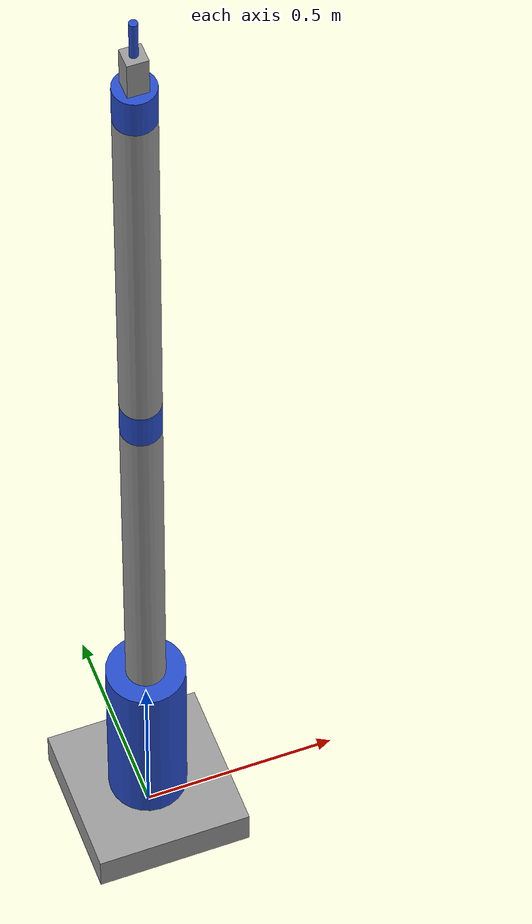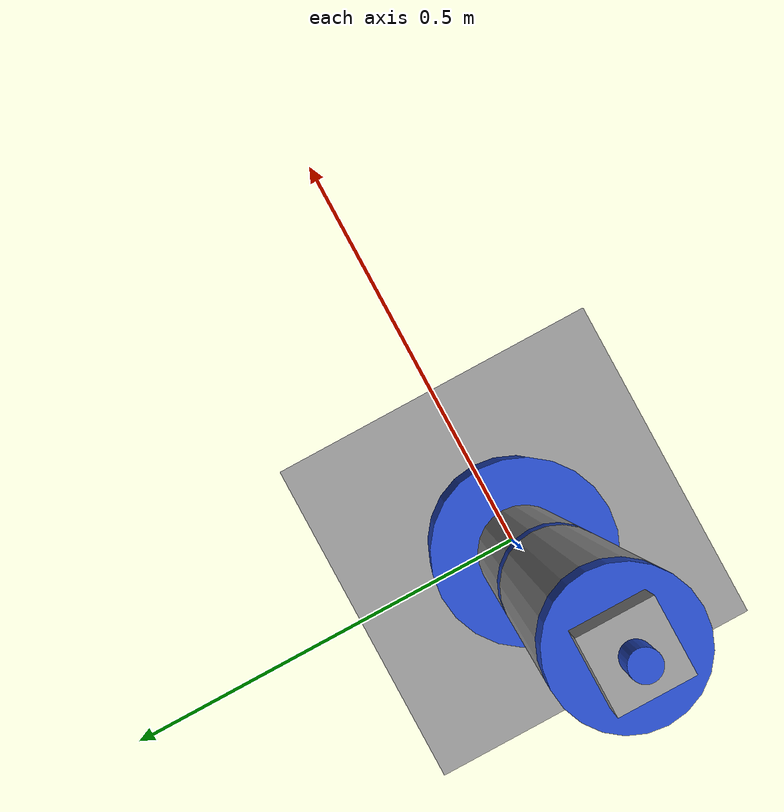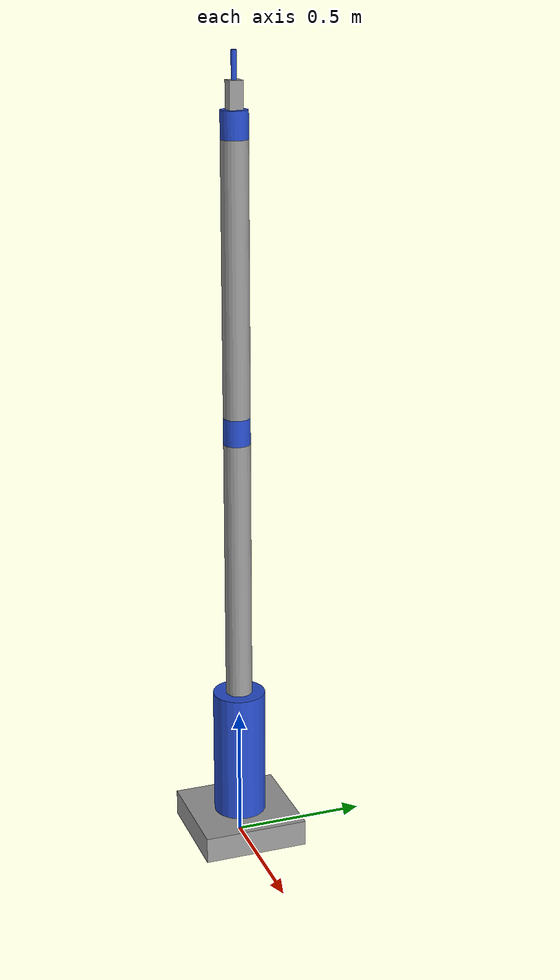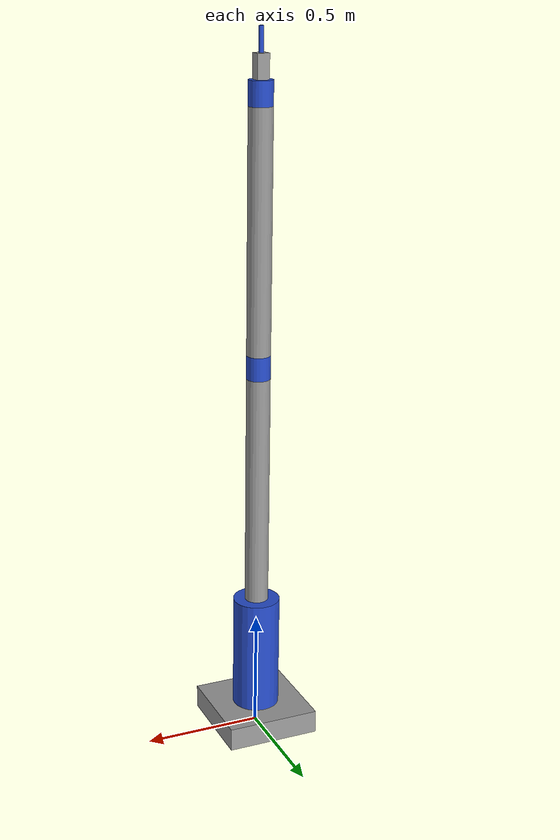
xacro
<?xml version="1.0"?>
<robot name="my_robot">

    <link name="base_link">
        <visual>
            <geometry>
                <box size="0.4 0.4 0.1" />
            </geometry>
            <origin xyz="0 0 0.05" rpy="0 0 0" />
            <material name="grey"/>
        </visual>
        <collision>
            <geometry>
                <box size="0.4 0.4 0.1" />
            </geometry>
            <origin xyz="0 0 0.05" rpy="0 0 0" />
        </collision>
    </link>

    <link name="shoulder_link">
        <visual>
            <geometry>
                <cylinder length="0.5" radius="0.1"/>
            </geometry>
            <origin xyz="0 0 0.25" rpy="0 0 0" />
            <material name="blue" />
        </visual>
        <collision>
            <geometry>
                <cylinder length="0.5" radius="0.1"/>
            </geometry>
            <origin xyz="0 0 0.25" rpy="0 0 0" />
        </collision>
    </link>

    <link name="shoulder_link1">
        <visual>
            <geometry>
                <cylinder length="1.0" radius="0.05"/>
            </geometry>
            <origin xyz="0 0 0.5" rpy="0 0 0" />
            <material name="grey" />
        </visual>
        <collision>
            <geometry>
                <cylinder length="1.0" radius="0.05"/>
            </geometry>
            <origin xyz="0 0 0.5" rpy="0 0 0" />
        </collision>
    </link>

    <link name="shoulder_link2">
        <visual>
            <geometry>
                <cylinder length="0.1" radius="0.05"/>
            </geometry>
            <origin xyz="0 0 0.05" rpy="0 0 0" />
            <material name="blue" />
        </visual>
        <collision>
            <geometry>
                <cylinder length="0.1" radius="0.05"/>
            </geometry>
            <origin xyz="0 0 0.05" rpy="0 0 0" />
        </collision>
    </link>

    <link name="shoulder_link3">
        <visual>
            <geometry>
                <cylinder length="1.0" radius="0.05"/>
            </geometry>
            <origin xyz="0 0 0.5" rpy="0 0 0" />
            <material name="grey" />
        </visual>
        <collision>
            <geometry>
                <cylinder length="1.0" radius="0.05"/>
            </geometry>
            <origin xyz="0 0 0.5" rpy="0 0 0" />
        </collision>
    </link>

    <link name="shoulder_link4">
        <visual>
            <geometry>
                <cylinder length="0.1" radius="0.05"/>
            </geometry>
            <origin xyz="0 0 0.05" rpy="0 0 0" />
            <material name="blue" />
        </visual>
        <collision>
            <geometry>
                <cylinder length="0.1" radius="0.05"/>
            </geometry>
            <origin xyz="0 0 0.05" rpy="0 0 0" />
        </collision>
    </link>

    <link name="shoulder_link5">
        <visual>
            <geometry>
                <box size="0.05 0.05 0.1" />
            </geometry>
            <origin xyz="0 0 0.05" rpy="0 0 0" />
            <material name="grey"/>
        </visual>
        <collision>
            <geometry>
                <box size="0.05 0.05 0.1" />
            </geometry>
            <origin xyz="0 0 0.05" rpy="0 0 0" />
        </collision>
    </link>

    <link name="shoulder_link6">
        <visual>
            <geometry>
                <cylinder length="0.1" radius="0.01"/>
            </geometry>
            <origin xyz="0 0 0.05" rpy="0 0 0" />
            <material name="blue" />
        </visual>
        <collision>
            <geometry>
                <cylinder length="0.1" radius="0.01"/>
            </geometry>
            <origin xyz="0 0 0.05" rpy="0 0 0" />
        </collision>
    </link>

    <joint name="joint1" type="revolute">
        <parent link="base_link" />
        <child link="shoulder_link" />
        <origin xyz="0 0 0.1" rpy="0 0 0" />
        <axis xyz="0 0 1" />
        <limit effort="1000.0" velocity="1.0" lower="-3.14" upper="3.14" />
    </joint>

    <joint name="joint2" type="revolute">
        <parent link="shoulder_link" />
        <child link="shoulder_link1" />
        <origin xyz="0 0 0.5" rpy="0 0 0" />
        <axis xyz="0 1 0" />
        <limit effort="1000.0" velocity="1.0" lower="-3.14" upper="3.14" />
    </joint>

    <joint name="joint3" type="revolute">
        <parent link="shoulder_link1" />
        <child link="shoulder_link2" />
        <origin xyz="0 0 1.0" rpy="0 0 0" />
        <axis xyz="0 1 0" />
        <limit effort="1000.0" velocity="1.0" lower="-3.14" upper="3.14" />
    </joint>

    <joint name="joint4" type="revolute">
        <parent link="shoulder_link2" />
        <child link="shoulder_link3" />
        <origin xyz="0 0 0.1" rpy="0 0 0" />
        <axis xyz="0 0 1" />
        <limit effort="1000.0" velocity="1.0" lower="-3.14" upper="3.14" />
    </joint>

    <joint name="joint5" type="revolute">
        <parent link="shoulder_link3" />
        <child link="shoulder_link4" />
        <origin xyz="0 0 1.0" rpy="0 0 0" />
        <axis xyz="0 1 0" />
        <limit effort="1000.0" velocity="1.0" lower="-1.57" upper="1.57" />
    </joint>

    <joint name="joint6" type="continuous">
        <parent link="shoulder_link4" />
        <child link="shoulder_link5" />
        <origin xyz="0 0 0.1" rpy="0 0 0" />
        <axis xyz="0 0 1" />
    </joint>

    <joint name="joint7" type="fixed">
        <parent link="shoulder_link5" />
        <child link="shoulder_link6" />
        <origin xyz="0 0 0.1" rpy="0 0 0" />
    </joint>
</robot>
